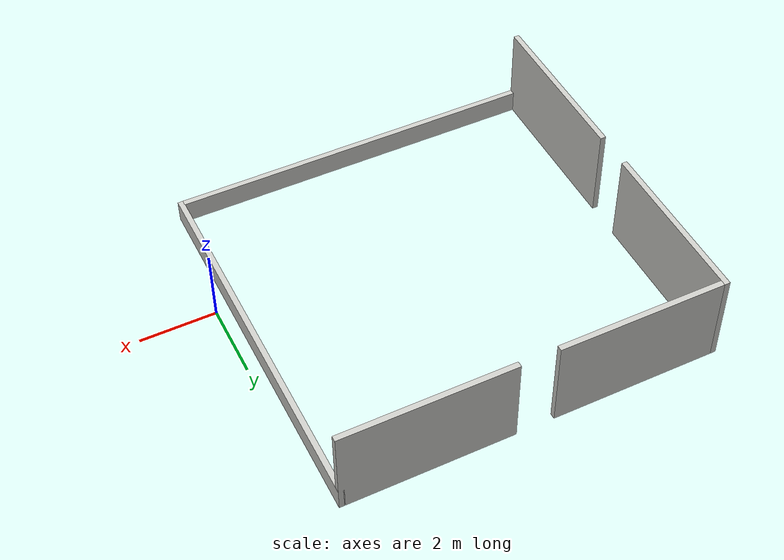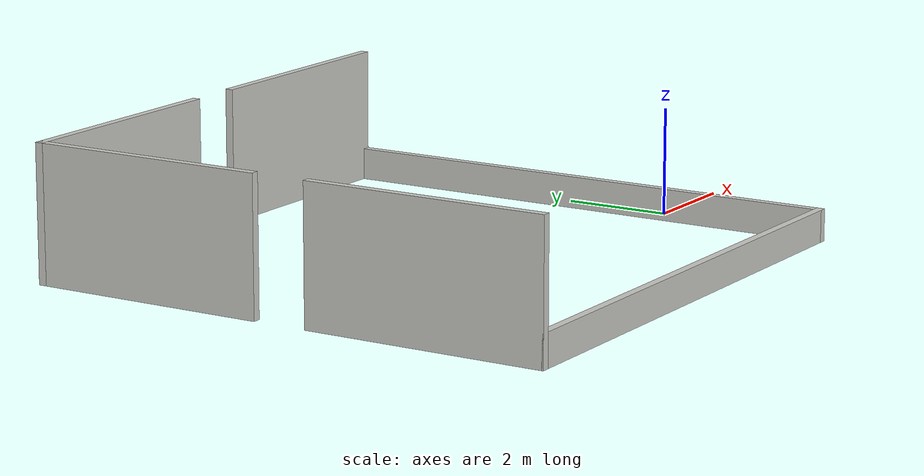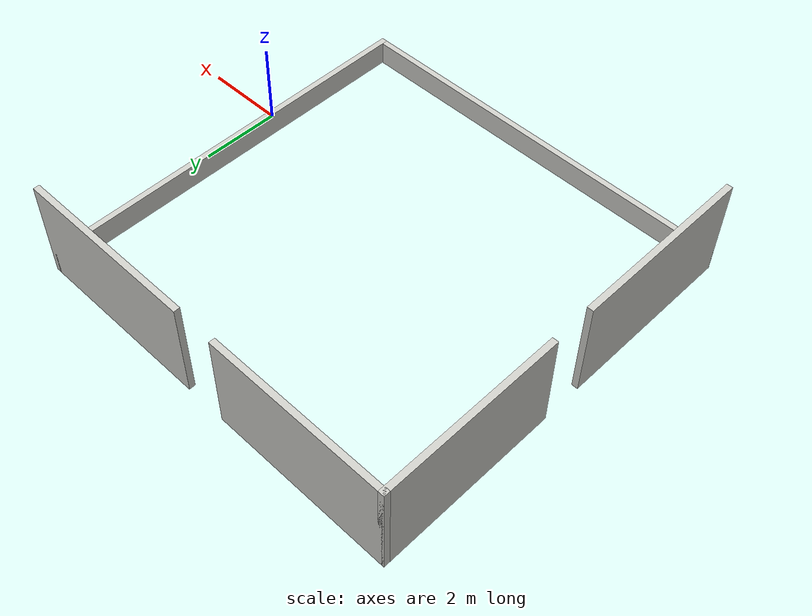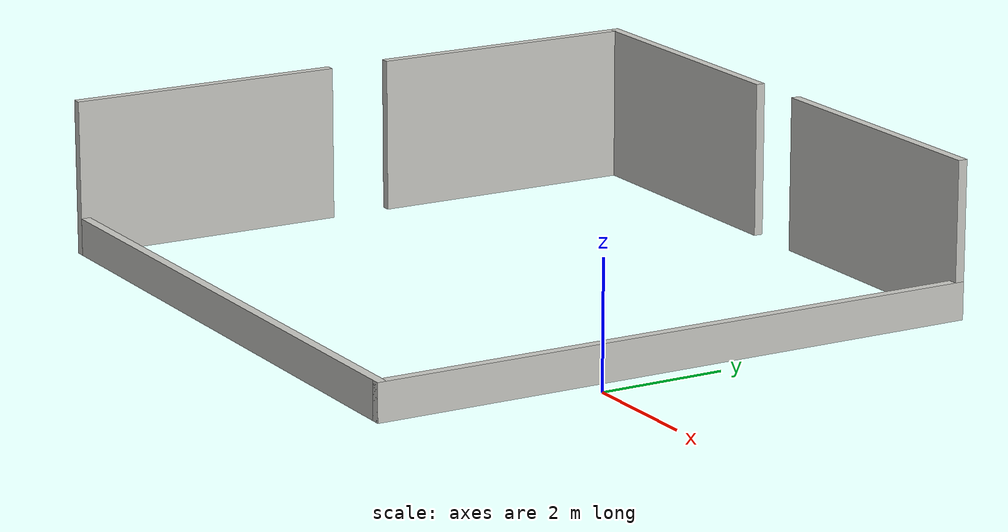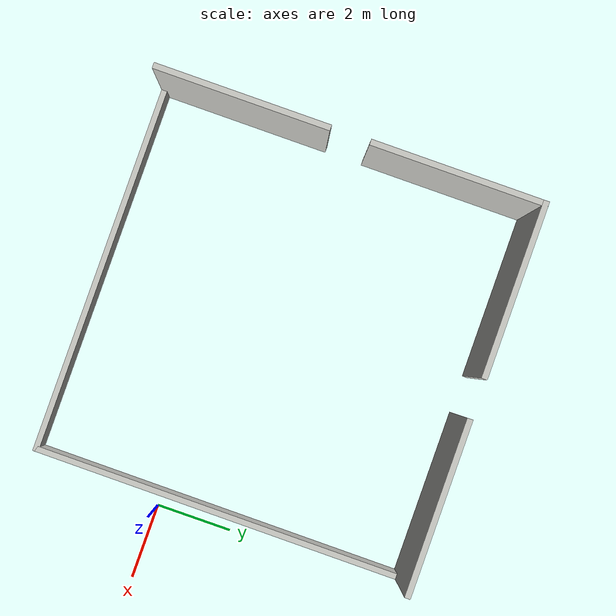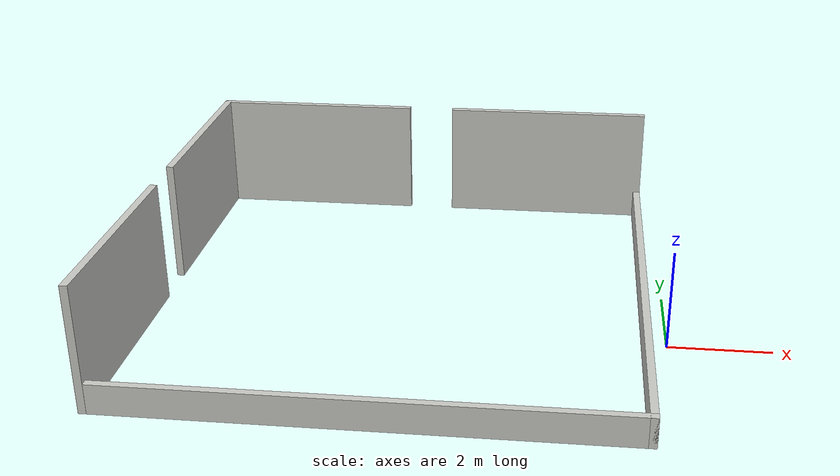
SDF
<?xml version='1.0'?>
<sdf version='1.7'>
  <model name='base_arena'>
    <pose>-5.17169 1.5409 0 0 -0 0</pose>
    <link name='Wall_10'>
      <collision name='Wall_10_Collision'>
        <geometry>
          <box>
            <size>4.5 0.15 2.5</size>
          </box>
        </geometry>
        <pose>0 0 1.25 0 -0 0</pose>
      </collision>
      <visual name='Wall_10_Visual'>
        <pose>0 0 1.25 0 -0 0</pose>
        <geometry>
          <box>
            <size>4.5 0.15 2.5</size>
          </box>
        </geometry>
        <material>
          <script>
            <uri>file://media/materials/scripts/gazebo.material</uri>
            <name>Gazebo/CeilingTiled</name>
          </script>
          <ambient>1 1 1 1</ambient>
        </material>
        <meta>
          <layer>0</layer>
        </meta>
      </visual>
      <pose>2.5785 4.9249 0 0 -0 -3.1415</pose>
    </link>
    <link name='Wall_12'>
      <collision name='Wall_12_Collision'>
        <geometry>
          <box>
            <size>4.5 0.15 2.5</size>
          </box>
        </geometry>
        <pose>0 0 1.25 0 -0 0</pose>
      </collision>
      <visual name='Wall_12_Visual'>
        <pose>0 0 1.25 0 -0 0</pose>
        <geometry>
          <box>
            <size>4.5 0.15 2.5</size>
          </box>
        </geometry>
        <material>
          <script>
            <uri>file://media/materials/scripts/gazebo.material</uri>
            <name>Gazebo/CeilingTiled</name>
          </script>
          <ambient>1 1 1 1</ambient>
        </material>
        <meta>
          <layer>0</layer>
        </meta>
      </visual>
      <pose>-5.09668 2.74971 0 0 -0 -1.5708</pose>
    </link>
    <link name='Wall_14'>
      <collision name='Wall_14_Collision'>
        <geometry>
          <box>
            <size>4.5 0.15 2.5</size>
          </box>
        </geometry>
        <pose>0 0 1.25 0 -0 0</pose>
      </collision>
      <visual name='Wall_14_Visual'>
        <pose>0 0 1.25 0 -0 0</pose>
        <geometry>
          <box>
            <size>4.5 0.15 2.5</size>
          </box>
        </geometry>
        <material>
          <script>
            <uri>file://media/materials/scripts/gazebo.material</uri>
            <name>Gazebo/CeilingTiled</name>
          </script>
          <ambient>1 1 1 1</ambient>
        </material>
        <meta>
          <layer>0</layer>
        </meta>
      </visual>
      <pose>-5.0965 -2.7501 0 0 -0 1.57088</pose>
    </link>
    <link name='Wall_3'>
      <collision name='Wall_3_Collision'>
        <geometry>
          <box>
            <size>10 0.15 0.6</size>
          </box>
        </geometry>
        <pose>0 0 0.3 0 -0 0</pose>
      </collision>
      <visual name='Wall_3_Visual'>
        <pose>0 0 0.3 0 -0 0</pose>
        <geometry>
          <box>
            <size>10 0.15 0.6</size>
          </box>
        </geometry>
        <material>
          <script>
            <uri>file://media/materials/scripts/gazebo.material</uri>
            <name>Gazebo/CeilingTiled</name>
          </script>
          <ambient>1 1 1 1</ambient>
        </material>
        <meta>
          <layer>0</layer>
        </meta>
      </visual>
      <pose>-0.17131 -4.9249 0 0 -0 0</pose>
    </link>
    <link name='Wall_4'>
      <collision name='Wall_4_Collision'>
        <geometry>
          <box>
            <size>10 0.15 0.6</size>
          </box>
        </geometry>
        <pose>0 0 0.3 0 -0 0</pose>
      </collision>
      <visual name='Wall_4_Visual'>
        <pose>0 0 0.3 0 -0 0</pose>
        <geometry>
          <box>
            <size>10 0.15 0.6</size>
          </box>
        </geometry>
        <material>
          <script>
            <uri>file://media/materials/scripts/gazebo.material</uri>
            <name>Gazebo/CeilingTiled</name>
          </script>
          <ambient>1 1 1 1</ambient>
        </material>
        <meta>
          <layer>0</layer>
        </meta>
      </visual>
      <pose>4.75369 9.8e-05 0 0 -0 1.5708</pose>
    </link>
    <link name='Wall_8'>
      <collision name='Wall_8_Collision'>
        <geometry>
          <box>
            <size>4.5 0.15 2.5</size>
          </box>
        </geometry>
        <pose>0 0 1.25 0 -0 0</pose>
      </collision>
      <visual name='Wall_8_Visual'>
        <pose>0 0 1.25 0 -0 0</pose>
        <geometry>
          <box>
            <size>4.5 0.15 2.5</size>
          </box>
        </geometry>
        <material>
          <script>
            <uri>file://media/materials/scripts/gazebo.material</uri>
            <name>Gazebo/CeilingTiled</name>
          </script>
          <ambient>1 1 1 1</ambient>
        </material>
        <meta>
          <layer>0</layer>
        </meta>
      </visual>
      <pose>-2.92168 4.92471 0 0 -0 0</pose>
    </link>
    <static>1</static>
  </model>
</sdf>
